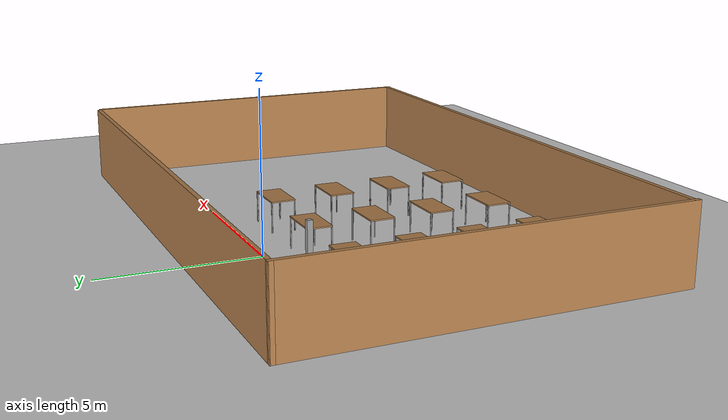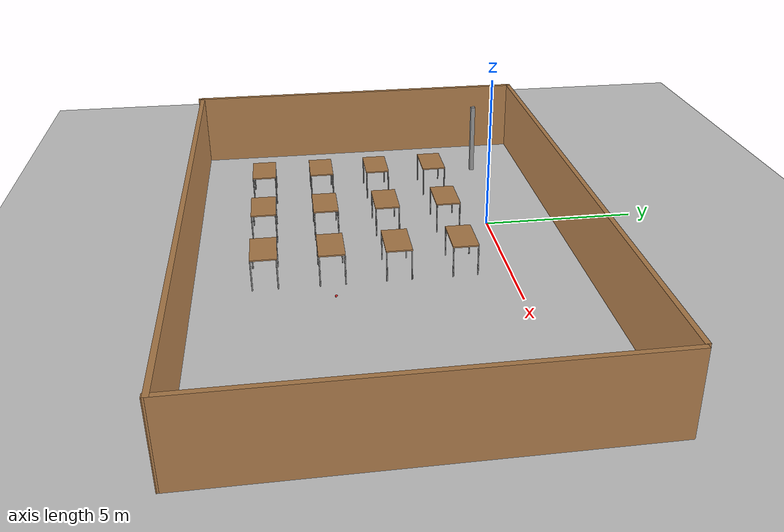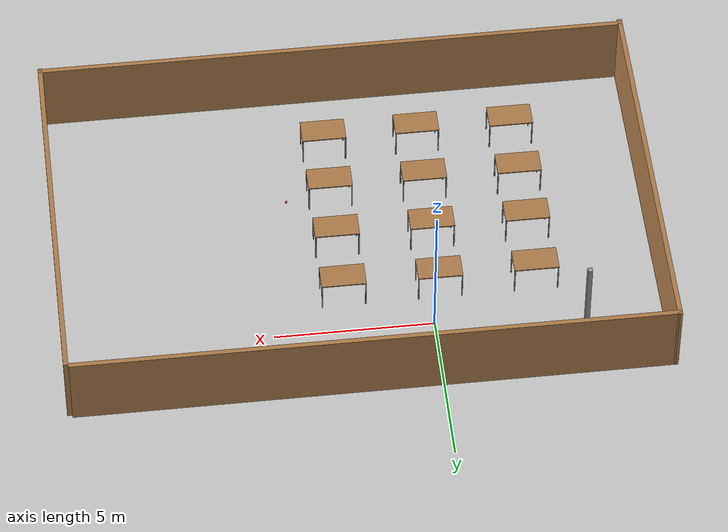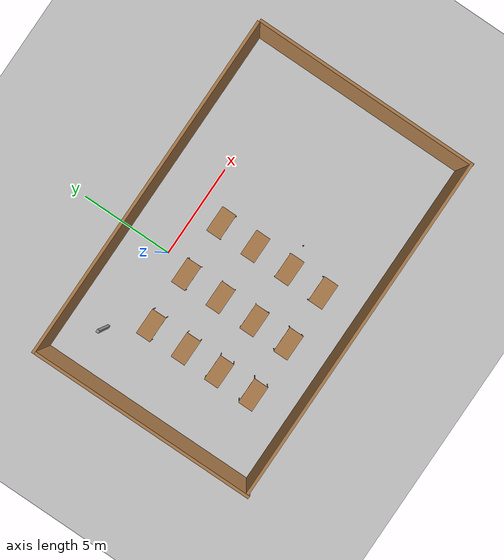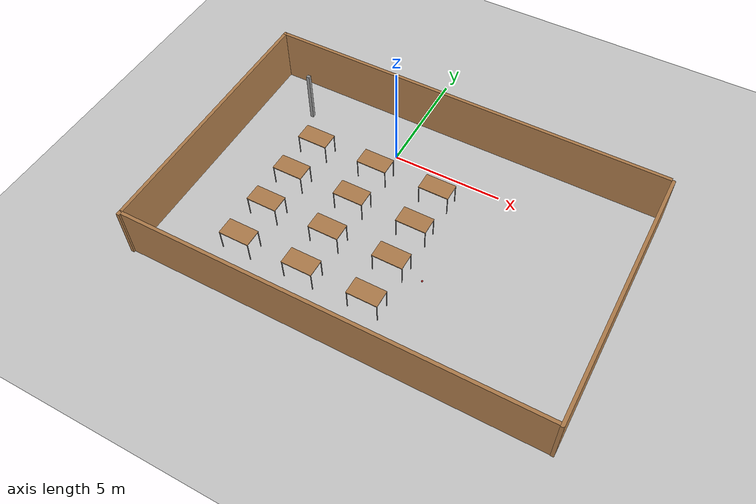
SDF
<sdf version="1.6">
 <world name="default">
  <light name="sun" type="directional">
   <pose>0 0 10 0 -0 0</pose>
   <diffuse>0.8 0.8 0.8 1</diffuse>
   <specular>0.1 0.1 0.1 1</specular>
   <attenuation>
    <range>1000</range>
    <constant>0.9</constant>
    <linear>0.01</linear>
    <quadratic>0.001</quadratic>
   </attenuation>
   <direction>-0.5 0.5 -1</direction>
  </light>
  <model name="ground_plane">
   <static>1</static>
   <link name="link">
    <collision name="collision">
     <geometry><plane><normal>0 0 1</normal><size>100 100</size></plane></geometry>
     <surface><friction><ode><mu>100</mu><mu2>50</mu2></ode></friction></surface>
    </collision>
    <visual name="visual">
     <cast_shadows>0</cast_shadows>
     <geometry><plane><normal>0 0 1</normal><size>100 100</size></plane></geometry>
     <material>
      <script><uri>file://media/materials/scripts/gazebo.material</uri><name>Gazebo/Grey</name></script>
     </material>
    </visual>
   </link>
  </model>
  <gravity>0 0 -9.8</gravity>
  <magnetic_field>6e-06 2.3e-05 -4.2e-05</magnetic_field>
  <atmosphere type="adiabatic"/>
  <physics name="default_physics" default="0" type="ode">
   <max_step_size>0.001</max_step_size>
   <real_time_factor>1</real_time_factor>
   <real_time_update_rate>1000</real_time_update_rate>
  </physics>
  <scene><ambient>0.4 0.4 0.4 1</ambient><background>0.7 0.7 0.7 1</background><shadows>1</shadows></scene>
  <spherical_coordinates>
   <surface_model>EARTH_WGS84</surface_model>
   <latitude_deg>0</latitude_deg>
   <longitude_deg>0</longitude_deg>
   <elevation>0</elevation>
   <heading_deg>0</heading_deg>
  </spherical_coordinates>
  <model name="table">
   <static>0</static>
   <link name="link">
    <collision name="surface">
     <pose>0 0 1 0 -0 0</pose>
     <geometry><box><size>1.5 0.8 0.03</size></box></geometry>
     <surface><friction><ode><mu>0.6</mu><mu2>0.6</mu2></ode></friction></surface>
    </collision>
    <visual name="visual1">
     <pose>0 0 1 0 -0 0</pose>
     <geometry><box><size>1.4 0.8 0.04</size></box></geometry>
     <material>
      <script><uri>file://media/materials/scripts/gazebo.material</uri><name>Gazebo/Wood</name></script>
     </material>
    </visual>
    <collision name="front_left_leg">
     <pose>0.68 0.38 0.5 0 -0 0</pose>
     <geometry><cylinder><radius>0.02</radius><length>1</length></cylinder></geometry>
    </collision>
    <visual name="front_left_leg">
     <pose>0.68 0.38 0.5 0 -0 0</pose>
     <geometry><cylinder><radius>0.02</radius><length>1</length></cylinder></geometry>
     <material>
      <script><uri>file://media/materials/scripts/gazebo.material</uri><name>Gazebo/Grey</name></script>
     </material>
    </visual>
    <collision name="front_right_leg">
     <pose>0.68 -0.38 0.5 0 -0 0</pose>
     <geometry><cylinder><radius>0.02</radius><length>1</length></cylinder></geometry>
    </collision>
    <visual name="front_right_leg">
     <pose>0.68 -0.38 0.5 0 -0 0</pose>
     <geometry><cylinder><radius>0.02</radius><length>1</length></cylinder></geometry>
     <material>
      <script><uri>file://media/materials/scripts/gazebo.material</uri><name>Gazebo/Grey</name></script>
     </material>
    </visual>
    <collision name="back_right_leg">
     <pose>-0.68 -0.38 0.5 0 -0 0</pose>
     <geometry><cylinder><radius>0.02</radius><length>1</length></cylinder></geometry>
    </collision>
    <visual name="back_right_leg">
     <pose>-0.68 -0.38 0.5 0 -0 0</pose>
     <geometry><cylinder><radius>0.02</radius><length>1</length></cylinder></geometry>
     <material>
      <script><uri>file://media/materials/scripts/gazebo.material</uri><name>Gazebo/Grey</name></script>
     </material>
    </visual>
    <collision name="back_left_leg">
     <pose>-0.68 0.38 0.5 0 -0 0</pose>
     <geometry><cylinder><radius>0.02</radius><length>1</length></cylinder></geometry>
    </collision>
    <visual name="back_left_leg">
     <pose>-0.68 0.38 0.5 0 -0 0</pose>
     <geometry><cylinder><radius>0.02</radius><length>1</length></cylinder></geometry>
     <material>
      <script><uri>file://media/materials/scripts/gazebo.material</uri><name>Gazebo/Grey</name></script>
     </material>
    </visual>
    <inertial>
     <inertia><ixx>1</ixx><ixy>0</ixy><ixz>0</ixz><iyy>1</iyy><iyz>0</iyz><izz>1</izz></inertia>
     <mass>1</mass>
    </inertial>
   </link>
   <pose>-3.30613 -1.39512 -3e-06 3e-06 2e-06 0</pose>
  </model>
  <model name="table_clone">
   <static>0</static>
   <link name="link">
    <collision name="surface">
     <pose>0 0 1 0 -0 0</pose>
     <geometry><box><size>1.5 0.8 0.03</size></box></geometry>
     <surface><friction><ode><mu>0.6</mu><mu2>0.6</mu2></ode></friction></surface>
    </collision>
    <visual name="visual1">
     <pose>0 0 1 0 -0 0</pose>
     <geometry><box><size>1.4 0.8 0.04</size></box></geometry>
     <material>
      <script><uri>file://media/materials/scripts/gazebo.material</uri><name>Gazebo/Wood</name></script>
     </material>
    </visual>
    <collision name="front_left_leg">
     <pose>0.68 0.38 0.5 0 -0 0</pose>
     <geometry><cylinder><radius>0.02</radius><length>1</length></cylinder></geometry>
    </collision>
    <visual name="front_left_leg">
     <pose>0.68 0.38 0.5 0 -0 0</pose>
     <geometry><cylinder><radius>0.02</radius><length>1</length></cylinder></geometry>
     <material>
      <script><uri>file://media/materials/scripts/gazebo.material</uri><name>Gazebo/Grey</name></script>
     </material>
    </visual>
    <collision name="front_right_leg">
     <pose>0.68 -0.38 0.5 0 -0 0</pose>
     <geometry><cylinder><radius>0.02</radius><length>1</length></cylinder></geometry>
    </collision>
    <visual name="front_right_leg">
     <pose>0.68 -0.38 0.5 0 -0 0</pose>
     <geometry><cylinder><radius>0.02</radius><length>1</length></cylinder></geometry>
     <material>
      <script><uri>file://media/materials/scripts/gazebo.material</uri><name>Gazebo/Grey</name></script>
     </material>
    </visual>
    <collision name="back_right_leg">
     <pose>-0.68 -0.38 0.5 0 -0 0</pose>
     <geometry><cylinder><radius>0.02</radius><length>1</length></cylinder></geometry>
    </collision>
    <visual name="back_right_leg">
     <pose>-0.68 -0.38 0.5 0 -0 0</pose>
     <geometry><cylinder><radius>0.02</radius><length>1</length></cylinder></geometry>
     <material>
      <script><uri>file://media/materials/scripts/gazebo.material</uri><name>Gazebo/Grey</name></script>
     </material>
    </visual>
    <collision name="back_left_leg">
     <pose>-0.68 0.38 0.5 0 -0 0</pose>
     <geometry><cylinder><radius>0.02</radius><length>1</length></cylinder></geometry>
    </collision>
    <visual name="back_left_leg">
     <pose>-0.68 0.38 0.5 0 -0 0</pose>
     <geometry><cylinder><radius>0.02</radius><length>1</length></cylinder></geometry>
     <material>
      <script><uri>file://media/materials/scripts/gazebo.material</uri><name>Gazebo/Grey</name></script>
     </material>
    </visual>
    <inertial>
     <inertia><ixx>1</ixx><ixy>0</ixy><ixz>0</ixz><iyy>1</iyy><iyz>0</iyz><izz>1</izz></inertia>
     <mass>1</mass>
    </inertial>
   </link>
   <pose>-3.29994 -3.42185 -1e-06 1e-06 -0 0</pose>
  </model>
  <model name="table_clone_clone">
   <static>0</static>
   <link name="link">
    <collision name="surface">
     <pose>0 0 1 0 -0 0</pose>
     <geometry><box><size>1.5 0.8 0.03</size></box></geometry>
     <surface><friction><ode><mu>0.6</mu><mu2>0.6</mu2></ode></friction></surface>
    </collision>
    <visual name="visual1">
     <pose>0 0 1 0 -0 0</pose>
     <geometry><box><size>1.4 0.8 0.04</size></box></geometry>
     <material>
      <script><uri>file://media/materials/scripts/gazebo.material</uri><name>Gazebo/Wood</name></script>
     </material>
    </visual>
    <collision name="front_left_leg">
     <pose>0.68 0.38 0.5 0 -0 0</pose>
     <geometry><cylinder><radius>0.02</radius><length>1</length></cylinder></geometry>
    </collision>
    <visual name="front_left_leg">
     <pose>0.68 0.38 0.5 0 -0 0</pose>
     <geometry><cylinder><radius>0.02</radius><length>1</length></cylinder></geometry>
     <material>
      <script><uri>file://media/materials/scripts/gazebo.material</uri><name>Gazebo/Grey</name></script>
     </material>
    </visual>
    <collision name="front_right_leg">
     <pose>0.68 -0.38 0.5 0 -0 0</pose>
     <geometry><cylinder><radius>0.02</radius><length>1</length></cylinder></geometry>
    </collision>
    <visual name="front_right_leg">
     <pose>0.68 -0.38 0.5 0 -0 0</pose>
     <geometry><cylinder><radius>0.02</radius><length>1</length></cylinder></geometry>
     <material>
      <script><uri>file://media/materials/scripts/gazebo.material</uri><name>Gazebo/Grey</name></script>
     </material>
    </visual>
    <collision name="back_right_leg">
     <pose>-0.68 -0.38 0.5 0 -0 0</pose>
     <geometry><cylinder><radius>0.02</radius><length>1</length></cylinder></geometry>
    </collision>
    <visual name="back_right_leg">
     <pose>-0.68 -0.38 0.5 0 -0 0</pose>
     <geometry><cylinder><radius>0.02</radius><length>1</length></cylinder></geometry>
     <material>
      <script><uri>file://media/materials/scripts/gazebo.material</uri><name>Gazebo/Grey</name></script>
     </material>
    </visual>
    <collision name="back_left_leg">
     <pose>-0.68 0.38 0.5 0 -0 0</pose>
     <geometry><cylinder><radius>0.02</radius><length>1</length></cylinder></geometry>
    </collision>
    <visual name="back_left_leg">
     <pose>-0.68 0.38 0.5 0 -0 0</pose>
     <geometry><cylinder><radius>0.02</radius><length>1</length></cylinder></geometry>
     <material>
      <script><uri>file://media/materials/scripts/gazebo.material</uri><name>Gazebo/Grey</name></script>
     </material>
    </visual>
    <inertial>
     <inertia><ixx>1</ixx><ixy>0</ixy><ixz>0</ixz><iyy>1</iyy><iyz>0</iyz><izz>1</izz></inertia>
     <mass>1</mass>
    </inertial>
   </link>
   <pose>-3.30692 -5.38253 -2e-06 -3e-06 -0 -0.002355</pose>
  </model>
  <model name="table_clone_clone_0">
   <static>0</static>
   <link name="link">
    <collision name="surface">
     <pose>0 0 1 0 -0 0</pose>
     <geometry><box><size>1.5 0.8 0.03</size></box></geometry>
     <surface><friction><ode><mu>0.6</mu><mu2>0.6</mu2></ode></friction></surface>
    </collision>
    <visual name="visual1">
     <pose>0 0 1 0 -0 0</pose>
     <geometry><box><size>1.4 0.8 0.04</size></box></geometry>
     <material>
      <script><uri>file://media/materials/scripts/gazebo.material</uri><name>Gazebo/Wood</name></script>
     </material>
    </visual>
    <collision name="front_left_leg">
     <pose>0.68 0.38 0.5 0 -0 0</pose>
     <geometry><cylinder><radius>0.02</radius><length>1</length></cylinder></geometry>
    </collision>
    <visual name="front_left_leg">
     <pose>0.68 0.38 0.5 0 -0 0</pose>
     <geometry><cylinder><radius>0.02</radius><length>1</length></cylinder></geometry>
     <material>
      <script><uri>file://media/materials/scripts/gazebo.material</uri><name>Gazebo/Grey</name></script>
     </material>
    </visual>
    <collision name="front_right_leg">
     <pose>0.68 -0.38 0.5 0 -0 0</pose>
     <geometry><cylinder><radius>0.02</radius><length>1</length></cylinder></geometry>
    </collision>
    <visual name="front_right_leg">
     <pose>0.68 -0.38 0.5 0 -0 0</pose>
     <geometry><cylinder><radius>0.02</radius><length>1</length></cylinder></geometry>
     <material>
      <script><uri>file://media/materials/scripts/gazebo.material</uri><name>Gazebo/Grey</name></script>
     </material>
    </visual>
    <collision name="back_right_leg">
     <pose>-0.68 -0.38 0.5 0 -0 0</pose>
     <geometry><cylinder><radius>0.02</radius><length>1</length></cylinder></geometry>
    </collision>
    <visual name="back_right_leg">
     <pose>-0.68 -0.38 0.5 0 -0 0</pose>
     <geometry><cylinder><radius>0.02</radius><length>1</length></cylinder></geometry>
     <material>
      <script><uri>file://media/materials/scripts/gazebo.material</uri><name>Gazebo/Grey</name></script>
     </material>
    </visual>
    <collision name="back_left_leg">
     <pose>-0.68 0.38 0.5 0 -0 0</pose>
     <geometry><cylinder><radius>0.02</radius><length>1</length></cylinder></geometry>
    </collision>
    <visual name="back_left_leg">
     <pose>-0.68 0.38 0.5 0 -0 0</pose>
     <geometry><cylinder><radius>0.02</radius><length>1</length></cylinder></geometry>
     <material>
      <script><uri>file://media/materials/scripts/gazebo.material</uri><name>Gazebo/Grey</name></script>
     </material>
    </visual>
    <inertial>
     <inertia><ixx>1</ixx><ixy>0</ixy><ixz>0</ixz><iyy>1</iyy><iyz>0</iyz><izz>1</izz></inertia>
     <mass>1</mass>
    </inertial>
   </link>
   <pose>-3.30428 -7.37927 -1e-06 1e-06 -0 0</pose>
  </model>
  <model name="table_clone_clone_1">
   <static>0</static>
   <link name="link">
    <collision name="surface">
     <pose>0 0 1 0 -0 0</pose>
     <geometry><box><size>1.5 0.8 0.03</size></box></geometry>
     <surface><friction><ode><mu>0.6</mu><mu2>0.6</mu2></ode></friction></surface>
    </collision>
    <visual name="visual1">
     <pose>0 0 1 0 -0 0</pose>
     <geometry><box><size>1.4 0.8 0.04</size></box></geometry>
     <material>
      <script><uri>file://media/materials/scripts/gazebo.material</uri><name>Gazebo/Wood</name></script>
     </material>
    </visual>
    <collision name="front_left_leg">
     <pose>0.68 0.38 0.5 0 -0 0</pose>
     <geometry><cylinder><radius>0.02</radius><length>1</length></cylinder></geometry>
    </collision>
    <visual name="front_left_leg">
     <pose>0.68 0.38 0.5 0 -0 0</pose>
     <geometry><cylinder><radius>0.02</radius><length>1</length></cylinder></geometry>
     <material>
      <script><uri>file://media/materials/scripts/gazebo.material</uri><name>Gazebo/Grey</name></script>
     </material>
    </visual>
    <collision name="front_right_leg">
     <pose>0.68 -0.38 0.5 0 -0 0</pose>
     <geometry><cylinder><radius>0.02</radius><length>1</length></cylinder></geometry>
    </collision>
    <visual name="front_right_leg">
     <pose>0.68 -0.38 0.5 0 -0 0</pose>
     <geometry><cylinder><radius>0.02</radius><length>1</length></cylinder></geometry>
     <material>
      <script><uri>file://media/materials/scripts/gazebo.material</uri><name>Gazebo/Grey</name></script>
     </material>
    </visual>
    <collision name="back_right_leg">
     <pose>-0.68 -0.38 0.5 0 -0 0</pose>
     <geometry><cylinder><radius>0.02</radius><length>1</length></cylinder></geometry>
    </collision>
    <visual name="back_right_leg">
     <pose>-0.68 -0.38 0.5 0 -0 0</pose>
     <geometry><cylinder><radius>0.02</radius><length>1</length></cylinder></geometry>
     <material>
      <script><uri>file://media/materials/scripts/gazebo.material</uri><name>Gazebo/Grey</name></script>
     </material>
    </visual>
    <collision name="back_left_leg">
     <pose>-0.68 0.38 0.5 0 -0 0</pose>
     <geometry><cylinder><radius>0.02</radius><length>1</length></cylinder></geometry>
    </collision>
    <visual name="back_left_leg">
     <pose>-0.68 0.38 0.5 0 -0 0</pose>
     <geometry><cylinder><radius>0.02</radius><length>1</length></cylinder></geometry>
     <material>
      <script><uri>file://media/materials/scripts/gazebo.material</uri><name>Gazebo/Grey</name></script>
     </material>
    </visual>
    <inertial>
     <inertia><ixx>1</ixx><ixy>0</ixy><ixz>0</ixz><iyy>1</iyy><iyz>0</iyz><izz>1</izz></inertia>
     <mass>1</mass>
    </inertial>
   </link>
   <pose>-0.298523 -1.40287 -9e-06 -1e-06 0 0</pose>
  </model>
  <model name="table_clone_clone_2">
   <static>0</static>
   <link name="link">
    <collision name="surface">
     <pose>0 0 1 0 -0 0</pose>
     <geometry><box><size>1.5 0.8 0.03</size></box></geometry>
     <surface><friction><ode><mu>0.6</mu><mu2>0.6</mu2></ode></friction></surface>
    </collision>
    <visual name="visual1">
     <pose>0 0 1 0 -0 0</pose>
     <geometry><box><size>1.4 0.8 0.04</size></box></geometry>
     <material>
      <script><uri>file://media/materials/scripts/gazebo.material</uri><name>Gazebo/Wood</name></script>
     </material>
    </visual>
    <collision name="front_left_leg">
     <pose>0.68 0.38 0.5 0 -0 0</pose>
     <geometry><cylinder><radius>0.02</radius><length>1</length></cylinder></geometry>
    </collision>
    <visual name="front_left_leg">
     <pose>0.68 0.38 0.5 0 -0 0</pose>
     <geometry><cylinder><radius>0.02</radius><length>1</length></cylinder></geometry>
     <material>
      <script><uri>file://media/materials/scripts/gazebo.material</uri><name>Gazebo/Grey</name></script>
     </material>
    </visual>
    <collision name="front_right_leg">
     <pose>0.68 -0.38 0.5 0 -0 0</pose>
     <geometry><cylinder><radius>0.02</radius><length>1</length></cylinder></geometry>
    </collision>
    <visual name="front_right_leg">
     <pose>0.68 -0.38 0.5 0 -0 0</pose>
     <geometry><cylinder><radius>0.02</radius><length>1</length></cylinder></geometry>
     <material>
      <script><uri>file://media/materials/scripts/gazebo.material</uri><name>Gazebo/Grey</name></script>
     </material>
    </visual>
    <collision name="back_right_leg">
     <pose>-0.68 -0.38 0.5 0 -0 0</pose>
     <geometry><cylinder><radius>0.02</radius><length>1</length></cylinder></geometry>
    </collision>
    <visual name="back_right_leg">
     <pose>-0.68 -0.38 0.5 0 -0 0</pose>
     <geometry><cylinder><radius>0.02</radius><length>1</length></cylinder></geometry>
     <material>
      <script><uri>file://media/materials/scripts/gazebo.material</uri><name>Gazebo/Grey</name></script>
     </material>
    </visual>
    <collision name="back_left_leg">
     <pose>-0.68 0.38 0.5 0 -0 0</pose>
     <geometry><cylinder><radius>0.02</radius><length>1</length></cylinder></geometry>
    </collision>
    <visual name="back_left_leg">
     <pose>-0.68 0.38 0.5 0 -0 0</pose>
     <geometry><cylinder><radius>0.02</radius><length>1</length></cylinder></geometry>
     <material>
      <script><uri>file://media/materials/scripts/gazebo.material</uri><name>Gazebo/Grey</name></script>
     </material>
    </visual>
    <inertial>
     <inertia><ixx>1</ixx><ixy>0</ixy><ixz>0</ixz><iyy>1</iyy><iyz>0</iyz><izz>1</izz></inertia>
     <mass>1</mass>
    </inertial>
   </link>
   <pose>-0.295873 -3.41266 -1e-06 -2e-06 -0 -0.000102</pose>
  </model>
  <model name="table_clone_clone_3">
   <static>0</static>
   <link name="link">
    <collision name="surface">
     <pose>0 0 1 0 -0 0</pose>
     <geometry><box><size>1.5 0.8 0.03</size></box></geometry>
     <surface><friction><ode><mu>0.6</mu><mu2>0.6</mu2></ode></friction></surface>
    </collision>
    <visual name="visual1">
     <pose>0 0 1 0 -0 0</pose>
     <geometry><box><size>1.4 0.8 0.04</size></box></geometry>
     <material>
      <script><uri>file://media/materials/scripts/gazebo.material</uri><name>Gazebo/Wood</name></script>
     </material>
    </visual>
    <collision name="front_left_leg">
     <pose>0.68 0.38 0.5 0 -0 0</pose>
     <geometry><cylinder><radius>0.02</radius><length>1</length></cylinder></geometry>
    </collision>
    <visual name="front_left_leg">
     <pose>0.68 0.38 0.5 0 -0 0</pose>
     <geometry><cylinder><radius>0.02</radius><length>1</length></cylinder></geometry>
     <material>
      <script><uri>file://media/materials/scripts/gazebo.material</uri><name>Gazebo/Grey</name></script>
     </material>
    </visual>
    <collision name="front_right_leg">
     <pose>0.68 -0.38 0.5 0 -0 0</pose>
     <geometry><cylinder><radius>0.02</radius><length>1</length></cylinder></geometry>
    </collision>
    <visual name="front_right_leg">
     <pose>0.68 -0.38 0.5 0 -0 0</pose>
     <geometry><cylinder><radius>0.02</radius><length>1</length></cylinder></geometry>
     <material>
      <script><uri>file://media/materials/scripts/gazebo.material</uri><name>Gazebo/Grey</name></script>
     </material>
    </visual>
    <collision name="back_right_leg">
     <pose>-0.68 -0.38 0.5 0 -0 0</pose>
     <geometry><cylinder><radius>0.02</radius><length>1</length></cylinder></geometry>
    </collision>
    <visual name="back_right_leg">
     <pose>-0.68 -0.38 0.5 0 -0 0</pose>
     <geometry><cylinder><radius>0.02</radius><length>1</length></cylinder></geometry>
     <material>
      <script><uri>file://media/materials/scripts/gazebo.material</uri><name>Gazebo/Grey</name></script>
     </material>
    </visual>
    <collision name="back_left_leg">
     <pose>-0.68 0.38 0.5 0 -0 0</pose>
     <geometry><cylinder><radius>0.02</radius><length>1</length></cylinder></geometry>
    </collision>
    <visual name="back_left_leg">
     <pose>-0.68 0.38 0.5 0 -0 0</pose>
     <geometry><cylinder><radius>0.02</radius><length>1</length></cylinder></geometry>
     <material>
      <script><uri>file://media/materials/scripts/gazebo.material</uri><name>Gazebo/Grey</name></script>
     </material>
    </visual>
    <inertial>
     <inertia><ixx>1</ixx><ixy>0</ixy><ixz>0</ixz><iyy>1</iyy><iyz>0</iyz><izz>1</izz></inertia>
     <mass>1</mass>
    </inertial>
   </link>
   <pose>-0.29332 -5.40597 -1e-06 1e-06 -0 0</pose>
  </model>
  <model name="table_clone_clone_4">
   <static>0</static>
   <link name="link">
    <collision name="surface">
     <pose>0 0 1 0 -0 0</pose>
     <geometry><box><size>1.5 0.8 0.03</size></box></geometry>
     <surface><friction><ode><mu>0.6</mu><mu2>0.6</mu2></ode></friction></surface>
    </collision>
    <visual name="visual1">
     <pose>0 0 1 0 -0 0</pose>
     <geometry><box><size>1.4 0.8 0.04</size></box></geometry>
     <material>
      <script><uri>file://media/materials/scripts/gazebo.material</uri><name>Gazebo/Wood</name></script>
     </material>
    </visual>
    <collision name="front_left_leg">
     <pose>0.68 0.38 0.5 0 -0 0</pose>
     <geometry><cylinder><radius>0.02</radius><length>1</length></cylinder></geometry>
    </collision>
    <visual name="front_left_leg">
     <pose>0.68 0.38 0.5 0 -0 0</pose>
     <geometry><cylinder><radius>0.02</radius><length>1</length></cylinder></geometry>
     <material>
      <script><uri>file://media/materials/scripts/gazebo.material</uri><name>Gazebo/Grey</name></script>
     </material>
    </visual>
    <collision name="front_right_leg">
     <pose>0.68 -0.38 0.5 0 -0 0</pose>
     <geometry><cylinder><radius>0.02</radius><length>1</length></cylinder></geometry>
    </collision>
    <visual name="front_right_leg">
     <pose>0.68 -0.38 0.5 0 -0 0</pose>
     <geometry><cylinder><radius>0.02</radius><length>1</length></cylinder></geometry>
     <material>
      <script><uri>file://media/materials/scripts/gazebo.material</uri><name>Gazebo/Grey</name></script>
     </material>
    </visual>
    <collision name="back_right_leg">
     <pose>-0.68 -0.38 0.5 0 -0 0</pose>
     <geometry><cylinder><radius>0.02</radius><length>1</length></cylinder></geometry>
    </collision>
    <visual name="back_right_leg">
     <pose>-0.68 -0.38 0.5 0 -0 0</pose>
     <geometry><cylinder><radius>0.02</radius><length>1</length></cylinder></geometry>
     <material>
      <script><uri>file://media/materials/scripts/gazebo.material</uri><name>Gazebo/Grey</name></script>
     </material>
    </visual>
    <collision name="back_left_leg">
     <pose>-0.68 0.38 0.5 0 -0 0</pose>
     <geometry><cylinder><radius>0.02</radius><length>1</length></cylinder></geometry>
    </collision>
    <visual name="back_left_leg">
     <pose>-0.68 0.38 0.5 0 -0 0</pose>
     <geometry><cylinder><radius>0.02</radius><length>1</length></cylinder></geometry>
     <material>
      <script><uri>file://media/materials/scripts/gazebo.material</uri><name>Gazebo/Grey</name></script>
     </material>
    </visual>
    <inertial>
     <inertia><ixx>1</ixx><ixy>0</ixy><ixz>0</ixz><iyy>1</iyy><iyz>0</iyz><izz>1</izz></inertia>
     <mass>1</mass>
    </inertial>
   </link>
   <pose>-0.290539 -7.39955 -1e-06 1e-06 -0 0</pose>
  </model>
  <model name="table_clone_clone_5">
   <static>0</static>
   <link name="link">
    <collision name="surface">
     <pose>0 0 1 0 -0 0</pose>
     <geometry><box><size>1.5 0.8 0.03</size></box></geometry>
     <surface><friction><ode><mu>0.6</mu><mu2>0.6</mu2></ode></friction></surface>
    </collision>
    <visual name="visual1">
     <pose>0 0 1 0 -0 0</pose>
     <geometry><box><size>1.4 0.8 0.04</size></box></geometry>
     <material>
      <script><uri>file://media/materials/scripts/gazebo.material</uri><name>Gazebo/Wood</name></script>
     </material>
    </visual>
    <collision name="front_left_leg">
     <pose>0.68 0.38 0.5 0 -0 0</pose>
     <geometry><cylinder><radius>0.02</radius><length>1</length></cylinder></geometry>
    </collision>
    <visual name="front_left_leg">
     <pose>0.68 0.38 0.5 0 -0 0</pose>
     <geometry><cylinder><radius>0.02</radius><length>1</length></cylinder></geometry>
     <material>
      <script><uri>file://media/materials/scripts/gazebo.material</uri><name>Gazebo/Grey</name></script>
     </material>
    </visual>
    <collision name="front_right_leg">
     <pose>0.68 -0.38 0.5 0 -0 0</pose>
     <geometry><cylinder><radius>0.02</radius><length>1</length></cylinder></geometry>
    </collision>
    <visual name="front_right_leg">
     <pose>0.68 -0.38 0.5 0 -0 0</pose>
     <geometry><cylinder><radius>0.02</radius><length>1</length></cylinder></geometry>
     <material>
      <script><uri>file://media/materials/scripts/gazebo.material</uri><name>Gazebo/Grey</name></script>
     </material>
    </visual>
    <collision name="back_right_leg">
     <pose>-0.68 -0.38 0.5 0 -0 0</pose>
     <geometry><cylinder><radius>0.02</radius><length>1</length></cylinder></geometry>
    </collision>
    <visual name="back_right_leg">
     <pose>-0.68 -0.38 0.5 0 -0 0</pose>
     <geometry><cylinder><radius>0.02</radius><length>1</length></cylinder></geometry>
     <material>
      <script><uri>file://media/materials/scripts/gazebo.material</uri><name>Gazebo/Grey</name></script>
     </material>
    </visual>
    <collision name="back_left_leg">
     <pose>-0.68 0.38 0.5 0 -0 0</pose>
     <geometry><cylinder><radius>0.02</radius><length>1</length></cylinder></geometry>
    </collision>
    <visual name="back_left_leg">
     <pose>-0.68 0.38 0.5 0 -0 0</pose>
     <geometry><cylinder><radius>0.02</radius><length>1</length></cylinder></geometry>
     <material>
      <script><uri>file://media/materials/scripts/gazebo.material</uri><name>Gazebo/Grey</name></script>
     </material>
    </visual>
    <inertial>
     <inertia><ixx>1</ixx><ixy>0</ixy><ixz>0</ixz><iyy>1</iyy><iyz>0</iyz><izz>1</izz></inertia>
     <mass>1</mass>
    </inertial>
   </link>
   <pose>2.71557 -1.40721 -2e-06 -1e-06 0 0</pose>
  </model>
  <model name="table_clone_clone_6">
   <static>0</static>
   <link name="link">
    <collision name="surface">
     <pose>0 0 1 0 -0 0</pose>
     <geometry><box><size>1.5 0.8 0.03</size></box></geometry>
     <surface><friction><ode><mu>0.6</mu><mu2>0.6</mu2></ode></friction></surface>
    </collision>
    <visual name="visual1">
     <pose>0 0 1 0 -0 0</pose>
     <geometry><box><size>1.4 0.8 0.04</size></box></geometry>
     <material>
      <script><uri>file://media/materials/scripts/gazebo.material</uri><name>Gazebo/Wood</name></script>
     </material>
    </visual>
    <collision name="front_left_leg">
     <pose>0.68 0.38 0.5 0 -0 0</pose>
     <geometry><cylinder><radius>0.02</radius><length>1</length></cylinder></geometry>
    </collision>
    <visual name="front_left_leg">
     <pose>0.68 0.38 0.5 0 -0 0</pose>
     <geometry><cylinder><radius>0.02</radius><length>1</length></cylinder></geometry>
     <material>
      <script><uri>file://media/materials/scripts/gazebo.material</uri><name>Gazebo/Grey</name></script>
     </material>
    </visual>
    <collision name="front_right_leg">
     <pose>0.68 -0.38 0.5 0 -0 0</pose>
     <geometry><cylinder><radius>0.02</radius><length>1</length></cylinder></geometry>
    </collision>
    <visual name="front_right_leg">
     <pose>0.68 -0.38 0.5 0 -0 0</pose>
     <geometry><cylinder><radius>0.02</radius><length>1</length></cylinder></geometry>
     <material>
      <script><uri>file://media/materials/scripts/gazebo.material</uri><name>Gazebo/Grey</name></script>
     </material>
    </visual>
    <collision name="back_right_leg">
     <pose>-0.68 -0.38 0.5 0 -0 0</pose>
     <geometry><cylinder><radius>0.02</radius><length>1</length></cylinder></geometry>
    </collision>
    <visual name="back_right_leg">
     <pose>-0.68 -0.38 0.5 0 -0 0</pose>
     <geometry><cylinder><radius>0.02</radius><length>1</length></cylinder></geometry>
     <material>
      <script><uri>file://media/materials/scripts/gazebo.material</uri><name>Gazebo/Grey</name></script>
     </material>
    </visual>
    <collision name="back_left_leg">
     <pose>-0.68 0.38 0.5 0 -0 0</pose>
     <geometry><cylinder><radius>0.02</radius><length>1</length></cylinder></geometry>
    </collision>
    <visual name="back_left_leg">
     <pose>-0.68 0.38 0.5 0 -0 0</pose>
     <geometry><cylinder><radius>0.02</radius><length>1</length></cylinder></geometry>
     <material>
      <script><uri>file://media/materials/scripts/gazebo.material</uri><name>Gazebo/Grey</name></script>
     </material>
    </visual>
    <inertial>
     <inertia><ixx>1</ixx><ixy>0</ixy><ixz>0</ixz><iyy>1</iyy><iyz>0</iyz><izz>1</izz></inertia>
     <mass>1</mass>
    </inertial>
   </link>
   <pose>2.70206 -3.41637 -9e-06 -1e-06 0 0</pose>
  </model>
  <model name="table_clone_clone_7">
   <static>0</static>
   <link name="link">
    <collision name="surface">
     <pose>0 0 1 0 -0 0</pose>
     <geometry><box><size>1.5 0.8 0.03</size></box></geometry>
     <surface><friction><ode><mu>0.6</mu><mu2>0.6</mu2></ode></friction></surface>
    </collision>
    <visual name="visual1">
     <pose>0 0 1 0 -0 0</pose>
     <geometry><box><size>1.4 0.8 0.04</size></box></geometry>
     <material>
      <script><uri>file://media/materials/scripts/gazebo.material</uri><name>Gazebo/Wood</name></script>
     </material>
    </visual>
    <collision name="front_left_leg">
     <pose>0.68 0.38 0.5 0 -0 0</pose>
     <geometry><cylinder><radius>0.02</radius><length>1</length></cylinder></geometry>
    </collision>
    <visual name="front_left_leg">
     <pose>0.68 0.38 0.5 0 -0 0</pose>
     <geometry><cylinder><radius>0.02</radius><length>1</length></cylinder></geometry>
     <material>
      <script><uri>file://media/materials/scripts/gazebo.material</uri><name>Gazebo/Grey</name></script>
     </material>
    </visual>
    <collision name="front_right_leg">
     <pose>0.68 -0.38 0.5 0 -0 0</pose>
     <geometry><cylinder><radius>0.02</radius><length>1</length></cylinder></geometry>
    </collision>
    <visual name="front_right_leg">
     <pose>0.68 -0.38 0.5 0 -0 0</pose>
     <geometry><cylinder><radius>0.02</radius><length>1</length></cylinder></geometry>
     <material>
      <script><uri>file://media/materials/scripts/gazebo.material</uri><name>Gazebo/Grey</name></script>
     </material>
    </visual>
    <collision name="back_right_leg">
     <pose>-0.68 -0.38 0.5 0 -0 0</pose>
     <geometry><cylinder><radius>0.02</radius><length>1</length></cylinder></geometry>
    </collision>
    <visual name="back_right_leg">
     <pose>-0.68 -0.38 0.5 0 -0 0</pose>
     <geometry><cylinder><radius>0.02</radius><length>1</length></cylinder></geometry>
     <material>
      <script><uri>file://media/materials/scripts/gazebo.material</uri><name>Gazebo/Grey</name></script>
     </material>
    </visual>
    <collision name="back_left_leg">
     <pose>-0.68 0.38 0.5 0 -0 0</pose>
     <geometry><cylinder><radius>0.02</radius><length>1</length></cylinder></geometry>
    </collision>
    <visual name="back_left_leg">
     <pose>-0.68 0.38 0.5 0 -0 0</pose>
     <geometry><cylinder><radius>0.02</radius><length>1</length></cylinder></geometry>
     <material>
      <script><uri>file://media/materials/scripts/gazebo.material</uri><name>Gazebo/Grey</name></script>
     </material>
    </visual>
    <inertial>
     <inertia><ixx>1</ixx><ixy>0</ixy><ixz>0</ixz><iyy>1</iyy><iyz>0</iyz><izz>1</izz></inertia>
     <mass>1</mass>
    </inertial>
   </link>
   <pose>2.70484 -5.40994 -2e-06 -1e-06 0 0</pose>
  </model>
  <model name="table_clone_clone_8">
   <static>0</static>
   <link name="link">
    <collision name="surface">
     <pose>0 0 1 0 -0 0</pose>
     <geometry><box><size>1.5 0.8 0.03</size></box></geometry>
     <surface><friction><ode><mu>0.6</mu><mu2>0.6</mu2></ode></friction></surface>
    </collision>
    <visual name="visual1">
     <pose>0 0 1 0 -0 0</pose>
     <geometry><box><size>1.4 0.8 0.04</size></box></geometry>
     <material>
      <script><uri>file://media/materials/scripts/gazebo.material</uri><name>Gazebo/Wood</name></script>
     </material>
    </visual>
    <collision name="front_left_leg">
     <pose>0.68 0.38 0.5 0 -0 0</pose>
     <geometry><cylinder><radius>0.02</radius><length>1</length></cylinder></geometry>
    </collision>
    <visual name="front_left_leg">
     <pose>0.68 0.38 0.5 0 -0 0</pose>
     <geometry><cylinder><radius>0.02</radius><length>1</length></cylinder></geometry>
     <material>
      <script><uri>file://media/materials/scripts/gazebo.material</uri><name>Gazebo/Grey</name></script>
     </material>
    </visual>
    <collision name="front_right_leg">
     <pose>0.68 -0.38 0.5 0 -0 0</pose>
     <geometry><cylinder><radius>0.02</radius><length>1</length></cylinder></geometry>
    </collision>
    <visual name="front_right_leg">
     <pose>0.68 -0.38 0.5 0 -0 0</pose>
     <geometry><cylinder><radius>0.02</radius><length>1</length></cylinder></geometry>
     <material>
      <script><uri>file://media/materials/scripts/gazebo.material</uri><name>Gazebo/Grey</name></script>
     </material>
    </visual>
    <collision name="back_right_leg">
     <pose>-0.68 -0.38 0.5 0 -0 0</pose>
     <geometry><cylinder><radius>0.02</radius><length>1</length></cylinder></geometry>
    </collision>
    <visual name="back_right_leg">
     <pose>-0.68 -0.38 0.5 0 -0 0</pose>
     <geometry><cylinder><radius>0.02</radius><length>1</length></cylinder></geometry>
     <material>
      <script><uri>file://media/materials/scripts/gazebo.material</uri><name>Gazebo/Grey</name></script>
     </material>
    </visual>
    <collision name="back_left_leg">
     <pose>-0.68 0.38 0.5 0 -0 0</pose>
     <geometry><cylinder><radius>0.02</radius><length>1</length></cylinder></geometry>
    </collision>
    <visual name="back_left_leg">
     <pose>-0.68 0.38 0.5 0 -0 0</pose>
     <geometry><cylinder><radius>0.02</radius><length>1</length></cylinder></geometry>
     <material>
      <script><uri>file://media/materials/scripts/gazebo.material</uri><name>Gazebo/Grey</name></script>
     </material>
    </visual>
    <inertial>
     <inertia><ixx>1</ixx><ixy>0</ixy><ixz>0</ixz><iyy>1</iyy><iyz>0</iyz><izz>1</izz></inertia>
     <mass>1</mass>
    </inertial>
   </link>
   <pose>2.69168 -7.40316 -9e-06 -1e-06 0 0</pose>
  </model>
  <model name="C205">
   <pose>2.15826 -3.67183 0 0 -0 0</pose>
   <link name="Wall_24">
    <collision name="Wall_24_Collision">
     <geometry><box><size>0.15 0.15 2.5</size></box></geometry>
     <pose>0 0 1.25 0 -0 0</pose>
    </collision>
    <visual name="Wall_24_Visual">
     <pose>0 0 1.25 0 -0 0</pose>
     <geometry><box><size>0.15 0.15 2.5</size></box></geometry>
     <material>
      <script><uri>file://media/materials/scripts/gazebo.material</uri><name>Gazebo/Grey</name></script>
      <ambient>0 0 0 0</ambient>
     </material>
    </visual>
    <pose>-6.85815 4.07733 0 0 -0 0</pose>
   </link>
   <link name="Wall_25">
    <collision name="Wall_25_Collision">
     <geometry><box><size>18.6594 0.15 2.5</size></box></geometry>
     <pose>0 0 1.25 0 -0 0</pose>
    </collision>
    <visual name="Wall_25_Visual">
     <pose>0 0 1.25 0 -0 0</pose>
     <geometry><box><size>18.6594 0.15 2.5</size></box></geometry>
     <material>
      <script><uri>file://media/materials/scripts/gazebo.material</uri><name>Gazebo/Wood</name></script>
      <ambient>1 1 1 1</ambient>
     </material>
    </visual>
    <pose>-0.077807 6.00709 0 0 -0 3.14159</pose>
   </link>
   <link name="Wall_26">
    <collision name="Wall_26_Collision">
     <geometry><box><size>12.1642 0.15 2.5</size></box></geometry>
     <pose>0 0 1.25 0 -0 0</pose>
    </collision>
    <visual name="Wall_26_Visual">
     <pose>0 0 1.25 0 -0 0</pose>
     <geometry><box><size>12.1642 0.15 2.5</size></box></geometry>
     <material>
      <script><uri>file://media/materials/scripts/gazebo.material</uri><name>Gazebo/Wood</name></script>
      <ambient>1 1 1 1</ambient>
     </material>
    </visual>
    <pose>-9.31253 0 0 0 0 -1.5675</pose>
   </link>
   <link name="Wall_27">
    <collision name="Wall_27_Collision">
     <geometry><box><size>18.7752 0.15 2.5</size></box></geometry>
     <pose>0 0 1.25 0 -0 0</pose>
    </collision>
    <visual name="Wall_27_Visual">
     <pose>0 0 1.25 0 -0 0</pose>
     <geometry><box><size>18.7752 0.15 2.5</size></box></geometry>
     <material>
      <script><uri>file://media/materials/scripts/gazebo.material</uri><name>Gazebo/Wood</name></script>
      <ambient>1 1 1 1</ambient>
     </material>
    </visual>
    <pose>0.019855 -5.91924 0 0 -0 0.001197</pose>
   </link>
   <link name="Wall_28">
    <collision name="Wall_28_Collision">
     <geometry><box><size>12 0.15 2.5</size></box></geometry>
     <pose>0 0 1.25 0 -0 0</pose>
    </collision>
    <visual name="Wall_28_Visual">
     <pose>0 0 1.25 0 -0 0</pose>
     <geometry><box><size>12 0.15 2.5</size></box></geometry>
     <material>
      <script><uri>file://media/materials/scripts/gazebo.material</uri><name>Gazebo/Wood</name></script>
      <ambient>1 1 1 1</ambient>
     </material>
    </visual>
    <pose>9.33246 -0.005389 0 0 -0 1.5708</pose>
   </link>
   <static>1</static>
  </model>
  <model name="cricket_ball">
   <link name="link">
    <pose>0 0 0.0375 0 -0 0</pose>
    <inertial>
     <mass>0.1467</mass>
     <inertia>
      <ixx>8.25187e-05</ixx>
      <ixy>0</ixy>
      <ixz>0</ixz>
      <iyy>8.25187e-05</iyy>
      <iyz>0</iyz>
      <izz>8.25187e-05</izz>
     </inertia>
    </inertial>
    <collision name="collision">
     <geometry><sphere><radius>0.0375</radius></sphere></geometry>
     <surface>
      <contact>
       <poissons_ratio>0.347</poissons_ratio>
       <elastic_modulus>8.8e+09</elastic_modulus>
       <ode><kp>100000</kp><kd>100</kd><max_vel>100</max_vel><min_depth>0.001</min_depth></ode>
      </contact>
      <friction>
       <torsional>
        <coefficient>1</coefficient>
        <use_patch_radius>0</use_patch_radius>
        <surface_radius>0.01</surface_radius>
       </torsional>
      </friction>
     </surface>
    </collision>
    <visual name="visual">
     <geometry><sphere><radius>0.0375</radius></sphere></geometry>
     <material>
      <script><uri>file://media/materials/scripts/gazebo.material</uri><name>Gazebo/Red</name></script>
     </material>
    </visual>
    <velocity_decay><linear>0</linear><angular>0.005</angular></velocity_decay>
   </link>
   <pose>4.08588 -5.36447 0 0 -0 0</pose>
  </model>
 </world>
</sdf>
